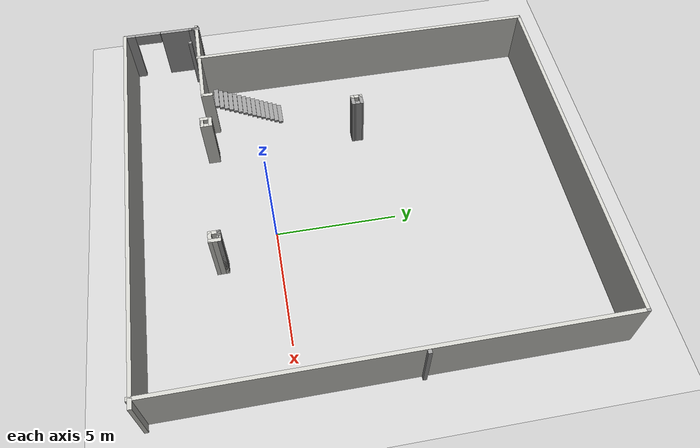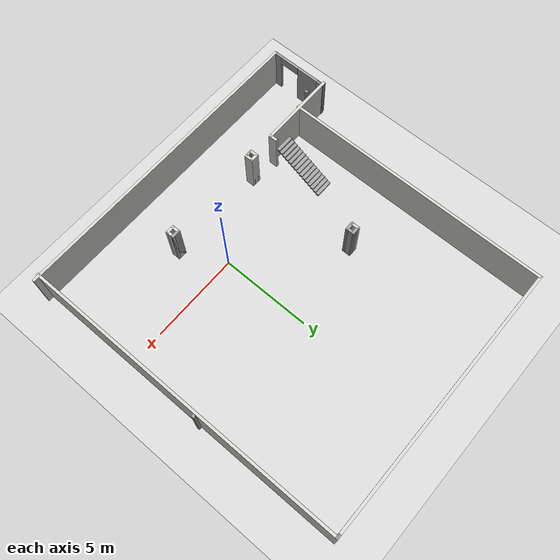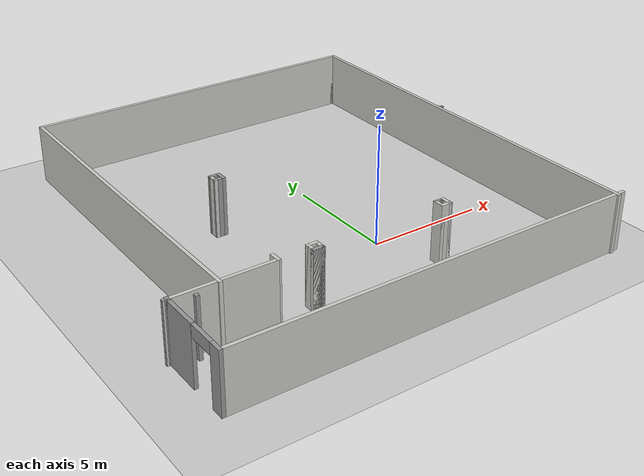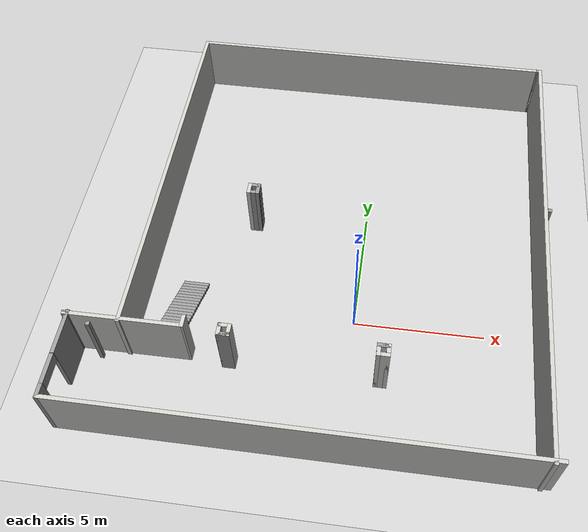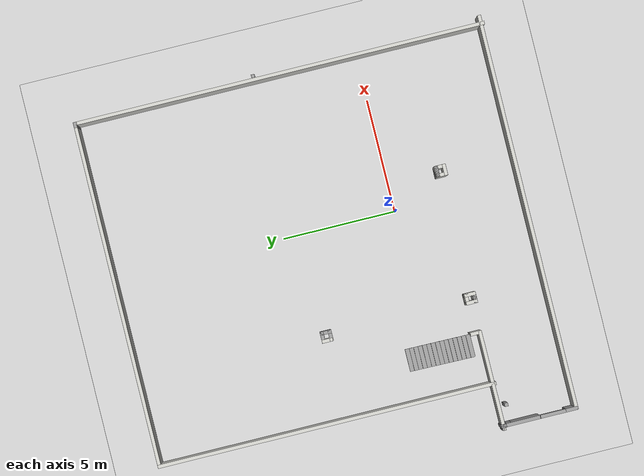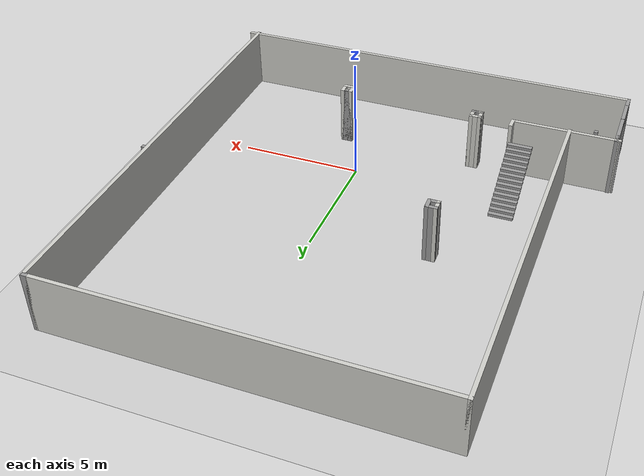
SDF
<sdf version="1.6">
 <world name="default">
  <model name="ground_plane">
   <static>1</static>
   <link name="link">
    <collision name="collision">
     <geometry><plane><normal>0 0 1</normal><size>100 100</size></plane></geometry>
     <surface><friction><ode><mu>100</mu><mu2>50</mu2></ode></friction></surface>
    </collision>
    <visual name="visual">
     <cast_shadows>0</cast_shadows>
     <geometry><plane><normal>0 0 1</normal><size>100 100</size></plane></geometry>
     <material>
      <script><uri>file://media/materials/scripts/gazebo.material</uri><name>Gazebo/Grey</name></script>
     </material>
    </visual>
   </link>
  </model>
  <model name="DroneLab">
   <pose>-1.49555 3.47526 0 0 -0 0</pose>
   <link name="Stairs_5">
    <visual name="Stairs_5_Visual_0">
     <pose>-4.94634 -2.5451 0.056667 0 -0 0</pose>
     <geometry><box><size>1 0.1908 0.113333</size></box></geometry>
     <material>
      <script><uri>file://media/materials/scripts/gazebo.material</uri><name>Gazebo/Grey</name></script>
      <ambient>1 1 1 1</ambient>
     </material>
    </visual>
    <collision name="Stairs_5_Collision_0">
     <geometry><box><size>1 0.1908 0.113333</size></box></geometry>
     <pose>-4.94634 -2.5451 0.056667 0 -0 0</pose>
    </collision>
    <visual name="Stairs_5_Visual_1">
     <pose>-4.94634 -2.7359 0.17 0 -0 0</pose>
     <geometry><box><size>1 0.1908 0.113333</size></box></geometry>
     <material>
      <script><uri>file://media/materials/scripts/gazebo.material</uri><name>Gazebo/Grey</name></script>
      <ambient>1 1 1 1</ambient>
     </material>
    </visual>
    <collision name="Stairs_5_Collision_1">
     <geometry><box><size>1 0.1908 0.113333</size></box></geometry>
     <pose>-4.94634 -2.7359 0.17 0 -0 0</pose>
    </collision>
    <visual name="Stairs_5_Visual_2">
     <pose>-4.94634 -2.9267 0.283333 0 -0 0</pose>
     <geometry><box><size>1 0.1908 0.113333</size></box></geometry>
     <material>
      <script><uri>file://media/materials/scripts/gazebo.material</uri><name>Gazebo/Grey</name></script>
      <ambient>1 1 1 1</ambient>
     </material>
    </visual>
    <collision name="Stairs_5_Collision_2">
     <geometry><box><size>1 0.1908 0.113333</size></box></geometry>
     <pose>-4.94634 -2.9267 0.283333 0 -0 0</pose>
    </collision>
    <visual name="Stairs_5_Visual_3">
     <pose>-4.94634 -3.1175 0.396667 0 -0 0</pose>
     <geometry><box><size>1 0.1908 0.113333</size></box></geometry>
     <material>
      <script><uri>file://media/materials/scripts/gazebo.material</uri><name>Gazebo/Grey</name></script>
      <ambient>1 1 1 1</ambient>
     </material>
    </visual>
    <collision name="Stairs_5_Collision_3">
     <geometry><box><size>1 0.1908 0.113333</size></box></geometry>
     <pose>-4.94634 -3.1175 0.396667 0 -0 0</pose>
    </collision>
    <visual name="Stairs_5_Visual_4">
     <pose>-4.94634 -3.3083 0.51 0 -0 0</pose>
     <geometry><box><size>1 0.1908 0.113333</size></box></geometry>
     <material>
      <script><uri>file://media/materials/scripts/gazebo.material</uri><name>Gazebo/Grey</name></script>
      <ambient>1 1 1 1</ambient>
     </material>
    </visual>
    <collision name="Stairs_5_Collision_4">
     <geometry><box><size>1 0.1908 0.113333</size></box></geometry>
     <pose>-4.94634 -3.3083 0.51 0 -0 0</pose>
    </collision>
    <visual name="Stairs_5_Visual_5">
     <pose>-4.94634 -3.4991 0.623333 0 -0 0</pose>
     <geometry><box><size>1 0.1908 0.113333</size></box></geometry>
     <material>
      <script><uri>file://media/materials/scripts/gazebo.material</uri><name>Gazebo/Grey</name></script>
      <ambient>1 1 1 1</ambient>
     </material>
    </visual>
    <collision name="Stairs_5_Collision_5">
     <geometry><box><size>1 0.1908 0.113333</size></box></geometry>
     <pose>-4.94634 -3.4991 0.623333 0 -0 0</pose>
    </collision>
    <visual name="Stairs_5_Visual_6">
     <pose>-4.94634 -3.6899 0.736667 0 -0 0</pose>
     <geometry><box><size>1 0.1908 0.113333</size></box></geometry>
     <material>
      <script><uri>file://media/materials/scripts/gazebo.material</uri><name>Gazebo/Grey</name></script>
      <ambient>1 1 1 1</ambient>
     </material>
    </visual>
    <collision name="Stairs_5_Collision_6">
     <geometry><box><size>1 0.1908 0.113333</size></box></geometry>
     <pose>-4.94634 -3.6899 0.736667 0 -0 0</pose>
    </collision>
    <visual name="Stairs_5_Visual_7">
     <pose>-4.94634 -3.8807 0.85 0 -0 0</pose>
     <geometry><box><size>1 0.1908 0.113333</size></box></geometry>
     <material>
      <script><uri>file://media/materials/scripts/gazebo.material</uri><name>Gazebo/Grey</name></script>
      <ambient>1 1 1 1</ambient>
     </material>
    </visual>
    <collision name="Stairs_5_Collision_7">
     <geometry><box><size>1 0.1908 0.113333</size></box></geometry>
     <pose>-4.94634 -3.8807 0.85 0 -0 0</pose>
    </collision>
    <visual name="Stairs_5_Visual_8">
     <pose>-4.94634 -4.0715 0.963333 0 -0 0</pose>
     <geometry><box><size>1 0.1908 0.113333</size></box></geometry>
     <material>
      <script><uri>file://media/materials/scripts/gazebo.material</uri><name>Gazebo/Grey</name></script>
      <ambient>1 1 1 1</ambient>
     </material>
    </visual>
    <collision name="Stairs_5_Collision_8">
     <geometry><box><size>1 0.1908 0.113333</size></box></geometry>
     <pose>-4.94634 -4.0715 0.963333 0 -0 0</pose>
    </collision>
    <visual name="Stairs_5_Visual_9">
     <pose>-4.94634 -4.2623 1.07667 0 -0 0</pose>
     <geometry><box><size>1 0.1908 0.113333</size></box></geometry>
     <material>
      <script><uri>file://media/materials/scripts/gazebo.material</uri><name>Gazebo/Grey</name></script>
      <ambient>1 1 1 1</ambient>
     </material>
    </visual>
    <collision name="Stairs_5_Collision_9">
     <geometry><box><size>1 0.1908 0.113333</size></box></geometry>
     <pose>-4.94634 -4.2623 1.07667 0 -0 0</pose>
    </collision>
    <visual name="Stairs_5_Visual_10">
     <pose>-4.94634 -4.4531 1.19 0 -0 0</pose>
     <geometry><box><size>1 0.1908 0.113333</size></box></geometry>
     <material>
      <script><uri>file://media/materials/scripts/gazebo.material</uri><name>Gazebo/Grey</name></script>
      <ambient>1 1 1 1</ambient>
     </material>
    </visual>
    <collision name="Stairs_5_Collision_10">
     <geometry><box><size>1 0.1908 0.113333</size></box></geometry>
     <pose>-4.94634 -4.4531 1.19 0 -0 0</pose>
    </collision>
    <visual name="Stairs_5_Visual_11">
     <pose>-4.94634 -4.6439 1.30333 0 -0 0</pose>
     <geometry><box><size>1 0.1908 0.113333</size></box></geometry>
     <material>
      <script><uri>file://media/materials/scripts/gazebo.material</uri><name>Gazebo/Grey</name></script>
      <ambient>1 1 1 1</ambient>
     </material>
    </visual>
    <collision name="Stairs_5_Collision_11">
     <geometry><box><size>1 0.1908 0.113333</size></box></geometry>
     <pose>-4.94634 -4.6439 1.30333 0 -0 0</pose>
    </collision>
    <visual name="Stairs_5_Visual_12">
     <pose>-4.94634 -4.8347 1.41667 0 -0 0</pose>
     <geometry><box><size>1 0.1908 0.113333</size></box></geometry>
     <material>
      <script><uri>file://media/materials/scripts/gazebo.material</uri><name>Gazebo/Grey</name></script>
      <ambient>1 1 1 1</ambient>
     </material>
    </visual>
    <collision name="Stairs_5_Collision_12">
     <geometry><box><size>1 0.1908 0.113333</size></box></geometry>
     <pose>-4.94634 -4.8347 1.41667 0 -0 0</pose>
    </collision>
    <visual name="Stairs_5_Visual_13">
     <pose>-4.94634 -5.0255 1.53 0 -0 0</pose>
     <geometry><box><size>1 0.1908 0.113333</size></box></geometry>
     <material>
      <script><uri>file://media/materials/scripts/gazebo.material</uri><name>Gazebo/Grey</name></script>
      <ambient>1 1 1 1</ambient>
     </material>
    </visual>
    <collision name="Stairs_5_Collision_13">
     <geometry><box><size>1 0.1908 0.113333</size></box></geometry>
     <pose>-4.94634 -5.0255 1.53 0 -0 0</pose>
    </collision>
    <visual name="Stairs_5_Visual_14">
     <pose>-4.94634 -5.2163 1.64333 0 -0 0</pose>
     <geometry><box><size>1 0.1908 0.113333</size></box></geometry>
     <material>
      <script><uri>file://media/materials/scripts/gazebo.material</uri><name>Gazebo/Grey</name></script>
      <ambient>1 1 1 1</ambient>
     </material>
    </visual>
    <collision name="Stairs_5_Collision_14">
     <geometry><box><size>1 0.1908 0.113333</size></box></geometry>
     <pose>-4.94634 -5.2163 1.64333 0 -0 0</pose>
    </collision>
   </link>
   <link name="Wall_0">
    <collision name="Wall_0_Collision">
     <geometry><box><size>0.5 0.15 2.5</size></box></geometry>
     <pose>0 0 1.25 0 -0 0</pose>
    </collision>
    <visual name="Wall_0_Visual">
     <pose>0 0 1.25 0 -0 0</pose>
     <geometry><box><size>0.5 0.15 2.5</size></box></geometry>
     <material>
      <script><uri>file://media/materials/scripts/gazebo.material</uri><name>Gazebo/CeilingTiled</name></script>
      <ambient>1 1 1 1</ambient>
     </material>
    </visual>
    <pose>-3.12301 -5.70317 0 0 -0 1.5708</pose>
   </link>
   <link name="Wall_1">
    <collision name="Wall_1_Collision">
     <geometry><box><size>0.5 0.15 2.5</size></box></geometry>
     <pose>0 0 1.25 0 -0 0</pose>
    </collision>
    <visual name="Wall_1_Visual">
     <pose>0 0 1.25 0 -0 0</pose>
     <geometry><box><size>0.5 0.15 2.5</size></box></geometry>
     <material>
      <script><uri>file://media/materials/scripts/gazebo.material</uri><name>Gazebo/CeilingTiled</name></script>
      <ambient>1 1 1 1</ambient>
     </material>
    </visual>
    <pose>-2.94801 -5.52817 0 0 -0 0</pose>
   </link>
   <link name="Wall_2">
    <collision name="Wall_2_Collision">
     <geometry><box><size>0.5 0.15 2.5</size></box></geometry>
     <pose>0 0 1.25 0 -0 0</pose>
    </collision>
    <visual name="Wall_2_Visual">
     <pose>0 0 1.25 0 -0 0</pose>
     <geometry><box><size>0.5 0.15 2.5</size></box></geometry>
     <material>
      <script><uri>file://media/materials/scripts/gazebo.material</uri><name>Gazebo/CeilingTiled</name></script>
      <ambient>1 1 1 1</ambient>
     </material>
    </visual>
    <pose>-2.773 -5.70317 0 0 0 -1.5708</pose>
   </link>
   <link name="Wall_3">
    <collision name="Wall_3_Collision">
     <geometry><box><size>0.5 0.15 2.5</size></box></geometry>
     <pose>0 0 1.25 0 -0 0</pose>
    </collision>
    <visual name="Wall_3_Visual">
     <pose>0 0 1.25 0 -0 0</pose>
     <geometry><box><size>0.5 0.15 2.5</size></box></geometry>
     <material>
      <script><uri>file://media/materials/scripts/gazebo.material</uri><name>Gazebo/Grey</name></script>
      <ambient>1 1 1 1</ambient>
     </material>
    </visual>
    <pose>-2.94801 -5.87817 0 0 -0 3.14159</pose>
   </link>
   <link name="Wall_4">
    <collision name="Wall_4_Collision">
     <geometry><box><size>0.5 0.15 2.5</size></box></geometry>
     <pose>0 0 1.25 0 -0 0</pose>
    </collision>
    <visual name="Wall_4_Visual">
     <pose>0 0 1.25 0 -0 0</pose>
     <geometry><box><size>0.5 0.15 2.5</size></box></geometry>
     <material>
      <script><uri>file://media/materials/scripts/gazebo.material</uri><name>Gazebo/CeilingTiled</name></script>
      <ambient>1 1 1 1</ambient>
     </material>
    </visual>
    <pose>-2.94801 -5.87817 0 0 -0 0</pose>
   </link>
   <link name="Wall_42">
    <collision name="Wall_42_Collision">
     <geometry><box><size>0.5 0.15 2.5</size></box></geometry>
     <pose>0 0 1.25 0 -0 0</pose>
    </collision>
    <visual name="Wall_42_Visual">
     <pose>0 0 1.25 0 -0 0</pose>
     <geometry><box><size>0.5 0.15 2.5</size></box></geometry>
     <material>
      <script><uri>file://media/materials/scripts/gazebo.material</uri><name>Gazebo/CeilingTiled</name></script>
      <ambient>1 1 1 1</ambient>
     </material>
    </visual>
    <pose>2.52847 -5.77691 0 0 0 -1.5708</pose>
   </link>
   <link name="Wall_43">
    <collision name="Wall_43_Collision">
     <geometry><box><size>0.5 0.15 2.5</size></box></geometry>
     <pose>0 0 1.25 0 -0 0</pose>
    </collision>
    <visual name="Wall_43_Visual">
     <pose>0 0 1.25 0 -0 0</pose>
     <geometry><box><size>0.5 0.15 2.5</size></box></geometry>
     <material>
      <script><uri>file://media/materials/scripts/gazebo.material</uri><name>Gazebo/CeilingTiled</name></script>
      <ambient>1 1 1 1</ambient>
     </material>
    </visual>
    <pose>2.70348 -5.95191 0 0 -0 0</pose>
   </link>
   <link name="Wall_44">
    <collision name="Wall_44_Collision">
     <geometry><box><size>0.5 0.15 2.5</size></box></geometry>
     <pose>0 0 1.25 0 -0 0</pose>
    </collision>
    <visual name="Wall_44_Visual">
     <pose>0 0 1.25 0 -0 0</pose>
     <geometry><box><size>0.5 0.15 2.5</size></box></geometry>
     <material>
      <script><uri>file://media/materials/scripts/gazebo.material</uri><name>Gazebo/CeilingTiled</name></script>
      <ambient>1 1 1 1</ambient>
     </material>
    </visual>
    <pose>2.87847 -5.77691 0 0 -0 1.5708</pose>
   </link>
   <link name="Wall_45">
    <collision name="Wall_45_Collision">
     <geometry><box><size>0.5 0.15 2.5</size></box></geometry>
     <pose>0 0 1.25 0 -0 0</pose>
    </collision>
    <visual name="Wall_45_Visual">
     <pose>0 0 1.25 0 -0 0</pose>
     <geometry><box><size>0.5 0.15 2.5</size></box></geometry>
     <material>
      <script><uri>file://media/materials/scripts/gazebo.material</uri><name>Gazebo/Grey</name></script>
      <ambient>1 1 1 1</ambient>
     </material>
    </visual>
    <pose>2.70348 -5.60191 0 0 -0 3.14159</pose>
   </link>
   <link name="Wall_46">
    <collision name="Wall_46_Collision">
     <geometry><box><size>0.5 0.15 2.5</size></box></geometry>
     <pose>0 0 1.25 0 -0 0</pose>
    </collision>
    <visual name="Wall_46_Visual">
     <pose>0 0 1.25 0 -0 0</pose>
     <geometry><box><size>0.5 0.15 2.5</size></box></geometry>
     <material>
      <script><uri>file://media/materials/scripts/gazebo.material</uri><name>Gazebo/CeilingTiled</name></script>
      <ambient>1 1 1 1</ambient>
     </material>
    </visual>
    <pose>2.70348 -5.60191 0 0 -0 0</pose>
   </link>
   <link name="Wall_49">
    <collision name="Wall_49_Collision">
     <geometry><box><size>17.5 0.15 2.5</size></box></geometry>
     <pose>0 0 1.25 0 -0 0</pose>
    </collision>
    <visual name="Wall_49_Visual">
     <pose>0 0 1.25 0 -0 0</pose>
     <geometry><box><size>17.5 0.15 2.5</size></box></geometry>
     <material>
      <script><uri>file://media/materials/scripts/gazebo.material</uri><name>Gazebo/CeilingTiled</name></script>
      <ambient>1 1 1 1</ambient>
     </material>
    </visual>
    <pose>0.066965 -8.97646 0 0 -0 3.14159</pose>
   </link>
   <link name="Wall_50">
    <pose>-8.6195 -7.3916 0 0 -0 1.5708</pose>
    <visual name="Wall_50_Visual_0">
     <pose>-1.3898 0 1.25 0 -0 0</pose>
     <geometry><box><size>0.540116 0.15 2.5</size></box></geometry>
     <material>
      <script><uri>file://media/materials/scripts/gazebo.material</uri><name>Gazebo/Grey</name></script>
      <ambient>1 1 1 1</ambient>
     </material>
    </visual>
    <collision name="Wall_50_Collision_0">
     <geometry><box><size>0.540116 0.15 2.5</size></box></geometry>
     <pose>-1.3898 0 1.25 0 -0 0</pose>
    </collision>
    <visual name="Wall_50_Visual_1">
     <pose>0.840426 0 1.25 0 -0 0</pose>
     <geometry><box><size>1.63887 0.15 2.5</size></box></geometry>
     <material>
      <script><uri>file://media/materials/scripts/gazebo.material</uri><name>Gazebo/Grey</name></script>
      <ambient>1 1 1 1</ambient>
     </material>
    </visual>
    <collision name="Wall_50_Collision_1">
     <geometry><box><size>1.63887 0.15 2.5</size></box></geometry>
     <pose>0.840426 0 1.25 0 -0 0</pose>
    </collision>
    <visual name="Wall_50_Visual_2">
     <pose>1.47373 0 1.25 0 -0 0</pose>
     <geometry><box><size>0.372264 0.15 2.5</size></box></geometry>
     <material>
      <script><uri>file://media/materials/scripts/gazebo.material</uri><name>Gazebo/Grey</name></script>
      <ambient>1 1 1 1</ambient>
     </material>
    </visual>
    <collision name="Wall_50_Collision_2">
     <geometry><box><size>0.372264 0.15 2.5</size></box></geometry>
     <pose>1.47373 0 1.25 0 -0 0</pose>
    </collision>
    <visual name="Wall_50_Visual_3">
     <pose>-0.557342 0 2.25 0 -0 0</pose>
     <geometry><box><size>1.12481 0.15 0.5</size></box></geometry>
     <material>
      <script><uri>file://media/materials/scripts/gazebo.material</uri><name>Gazebo/Grey</name></script>
      <ambient>1 1 1 1</ambient>
     </material>
    </visual>
    <collision name="Wall_50_Collision_3">
     <geometry><box><size>1.12481 0.15 0.5</size></box></geometry>
     <pose>-0.557342 0 2.25 0 -0 0</pose>
    </collision>
   </link>
   <link name="Wall_51">
    <collision name="Wall_51_Collision">
     <geometry><box><size>0.15 0.15 2.5</size></box></geometry>
     <pose>0 0 1.25 0 -0 0</pose>
    </collision>
    <visual name="Wall_51_Visual">
     <pose>0 0 1.25 0 -0 0</pose>
     <geometry><box><size>0.15 0.15 2.5</size></box></geometry>
     <material>
      <script><uri>file://media/materials/scripts/gazebo.material</uri><name>Gazebo/Grey</name></script>
      <ambient>1 1 1 1</ambient>
     </material>
    </visual>
    <pose>-8.6195 -5.80674 0 0 -0 0</pose>
   </link>
   <link name="Wall_52">
    <collision name="Wall_52_Collision">
     <geometry><box><size>0.25 0.15 2.5</size></box></geometry>
     <pose>0 0 1.25 0 -0 0</pose>
    </collision>
    <visual name="Wall_52_Visual">
     <pose>0 0 1.25 0 -0 0</pose>
     <geometry><box><size>0.25 0.15 2.5</size></box></geometry>
     <material>
      <script><uri>file://media/materials/scripts/gazebo.material</uri><name>Gazebo/Grey</name></script>
      <ambient>1 1 1 1</ambient>
     </material>
    </visual>
    <pose>-8.6195 -5.75674 0 0 -0 1.5708</pose>
   </link>
   <link name="Wall_53">
    <collision name="Wall_53_Collision">
     <geometry><box><size>0.25 0.15 2.5</size></box></geometry>
     <pose>0 0 1.25 0 -0 0</pose>
    </collision>
    <visual name="Wall_53_Visual">
     <pose>0 0 1.25 0 -0 0</pose>
     <geometry><box><size>0.25 0.15 2.5</size></box></geometry>
     <material>
      <script><uri>file://media/materials/scripts/gazebo.material</uri><name>Gazebo/Grey</name></script>
      <ambient>1 1 1 1</ambient>
     </material>
    </visual>
    <pose>-8.6195 -5.75674 0 0 0 -1.5708</pose>
   </link>
   <link name="Wall_54">
    <collision name="Wall_54_Collision">
     <geometry><box><size>0.25 0.15 2.5</size></box></geometry>
     <pose>0 0 1.25 0 -0 0</pose>
    </collision>
    <visual name="Wall_54_Visual">
     <pose>0 0 1.25 0 -0 0</pose>
     <geometry><box><size>0.25 0.15 2.5</size></box></geometry>
     <material>
      <script><uri>file://media/materials/scripts/gazebo.material</uri><name>Gazebo/Grey</name></script>
      <ambient>1 1 1 1</ambient>
     </material>
    </visual>
    <pose>-8.6195 -5.75674 0 0 -0 1.5708</pose>
   </link>
   <link name="Wall_55">
    <collision name="Wall_55_Collision">
     <geometry><box><size>0.25 0.15 2.5</size></box></geometry>
     <pose>0 0 1.25 0 -0 0</pose>
    </collision>
    <visual name="Wall_55_Visual">
     <pose>0 0 1.25 0 -0 0</pose>
     <geometry><box><size>0.25 0.15 2.5</size></box></geometry>
     <material>
      <script><uri>file://media/materials/scripts/gazebo.material</uri><name>Gazebo/Grey</name></script>
      <ambient>1 1 1 1</ambient>
     </material>
    </visual>
    <pose>-8.6195 -5.76239 0 0 0 -1.5708</pose>
   </link>
   <link name="Wall_59">
    <collision name="Wall_59_Collision">
     <geometry><box><size>0.15 0.15 2.5</size></box></geometry>
     <pose>0 0 1.25 0 -0 0</pose>
    </collision>
    <visual name="Wall_59_Visual">
     <pose>0 0 1.25 0 -0 0</pose>
     <geometry><box><size>0.15 0.15 2.5</size></box></geometry>
     <material>
      <script><uri>file://media/materials/scripts/gazebo.material</uri><name>Gazebo/Grey</name></script>
      <ambient>1 1 1 1</ambient>
     </material>
    </visual>
    <pose>-7.75553 -6.0809 0 0 -0 0</pose>
   </link>
   <link name="Wall_6">
    <collision name="Wall_6_Collision">
     <geometry><box><size>0.5 0.15 2.5</size></box></geometry>
     <pose>0 0 1.25 0 -0 0</pose>
    </collision>
    <visual name="Wall_6_Visual">
     <pose>0 0 1.25 0 -0 0</pose>
     <geometry><box><size>0.5 0.15 2.5</size></box></geometry>
     <material>
      <script><uri>file://media/materials/scripts/gazebo.material</uri><name>Gazebo/CeilingTiled</name></script>
      <ambient>1 1 1 1</ambient>
     </material>
    </visual>
    <pose>-4.45951 -5.55645 0 0 0 -1.5708</pose>
   </link>
   <link name="Wall_62">
    <collision name="Wall_62_Collision">
     <geometry><box><size>0.5 0.15 2.5</size></box></geometry>
     <pose>0 0 1.25 0 -0 0</pose>
    </collision>
    <visual name="Wall_62_Visual">
     <pose>0 0 1.25 0 -0 0</pose>
     <geometry><box><size>0.5 0.15 2.5</size></box></geometry>
     <material>
      <script><uri>file://media/materials/scripts/gazebo.material</uri><name>Gazebo/Grey</name></script>
      <ambient>1 1 1 1</ambient>
     </material>
    </visual>
    <pose>-3.05288 0.549165 0 0 -0 0</pose>
   </link>
   <link name="Wall_63">
    <collision name="Wall_63_Collision">
     <geometry><box><size>0.5 0.15 2.5</size></box></geometry>
     <pose>0 0 1.25 0 -0 0</pose>
    </collision>
    <visual name="Wall_63_Visual">
     <pose>0 0 1.25 0 -0 0</pose>
     <geometry><box><size>0.5 0.15 2.5</size></box></geometry>
     <material>
      <script><uri>file://media/materials/scripts/gazebo.material</uri><name>Gazebo/Grey</name></script>
      <ambient>1 1 1 1</ambient>
     </material>
    </visual>
    <pose>-2.87794 0.724 0 0 -0 1.57117</pose>
   </link>
   <link name="Wall_64">
    <collision name="Wall_64_Collision">
     <geometry><box><size>0.5 0.15 2.5</size></box></geometry>
     <pose>0 0 1.25 0 -0 0</pose>
    </collision>
    <visual name="Wall_64_Visual">
     <pose>0 0 1.25 0 -0 0</pose>
     <geometry><box><size>0.5 0.15 2.5</size></box></geometry>
     <material>
      <script><uri>file://media/materials/scripts/gazebo.material</uri><name>Gazebo/Grey</name></script>
      <ambient>1 1 1 1</ambient>
     </material>
    </visual>
    <pose>-3.05301 0.898834 0 0 -0 3.14159</pose>
   </link>
   <link name="Wall_65">
    <collision name="Wall_65_Collision">
     <geometry><box><size>0.5 0.15 2.5</size></box></geometry>
     <pose>0 0 1.25 0 -0 0</pose>
    </collision>
    <visual name="Wall_65_Visual">
     <pose>0 0 1.25 0 -0 0</pose>
     <geometry><box><size>0.5 0.15 2.5</size></box></geometry>
     <material>
      <script><uri>file://media/materials/scripts/gazebo.material</uri><name>Gazebo/CeilingTiled</name></script>
      <ambient>1 1 1 1</ambient>
     </material>
    </visual>
    <pose>-3.22794 0.724 0 0 0 -1.57042</pose>
   </link>
   <link name="Wall_66">
    <collision name="Wall_66_Collision">
     <geometry><box><size>0.15 0.15 2.5</size></box></geometry>
     <pose>0 0 1.25 0 -0 0</pose>
    </collision>
    <visual name="Wall_66_Visual">
     <pose>0 0 1.25 0 -0 0</pose>
     <geometry><box><size>0.15 0.15 2.5</size></box></geometry>
     <material>
      <script><uri>file://media/materials/scripts/gazebo.material</uri><name>Gazebo/CeilingTiled</name></script>
      <ambient>1 1 1 1</ambient>
     </material>
    </visual>
    <pose>-3.22788 0.549165 0 0 -0 0</pose>
   </link>
   <link name="Wall_7">
    <collision name="Wall_7_Collision">
     <geometry><box><size>4.42654 0.15 2.5</size></box></geometry>
     <pose>0 0 1.25 0 -0 0</pose>
    </collision>
    <visual name="Wall_7_Visual">
     <pose>0 0 1.25 0 -0 0</pose>
     <geometry><box><size>4.42654 0.15 2.5</size></box></geometry>
     <material>
      <script><uri>file://media/materials/scripts/gazebo.material</uri><name>Gazebo/CeilingTiled</name></script>
      <ambient>1 1 1 1</ambient>
     </material>
    </visual>
    <pose>-6.60341 -5.73993 0 0 0 -3.13763</pose>
   </link>
   <link name="Wall_70">
    <collision name="Wall_70_Collision">
     <geometry><box><size>0.15 0.15 2.5</size></box></geometry>
     <pose>0 0 1.25 0 -0 0</pose>
    </collision>
    <visual name="Wall_70_Visual">
     <pose>0 0 1.25 0 -0 0</pose>
     <geometry><box><size>0.15 0.15 2.5</size></box></geometry>
     <material>
      <script><uri>file://media/materials/scripts/gazebo.material</uri><name>Gazebo/Grey</name></script>
      <ambient>1 1 1 1</ambient>
     </material>
    </visual>
    <pose>8.6026 1.111 0 0 -0 0</pose>
   </link>
   <link name="Wall_8">
    <collision name="Wall_8_Collision">
     <geometry><box><size>0.15 0.15 2.5</size></box></geometry>
     <pose>0 0 1.25 0 -0 0</pose>
    </collision>
    <visual name="Wall_8_Visual">
     <pose>0 0 1.25 0 -0 0</pose>
     <geometry><box><size>0.15 0.15 2.5</size></box></geometry>
     <material>
      <script><uri>file://media/materials/scripts/gazebo.material</uri><name>Gazebo/Grey</name></script>
      <ambient>1 1 1 1</ambient>
     </material>
    </visual>
    <pose>-8.74167 -5.74841 0 0 -0 0</pose>
   </link>
   <link name="Wall_80">
    <collision name="Wall_80_Collision">
     <geometry><box><size>15 0.15 2.5</size></box></geometry>
     <pose>0 0 1.25 0 -0 0</pose>
    </collision>
    <visual name="Wall_80_Visual">
     <pose>0 0 1.25 0 -0 0</pose>
     <geometry><box><size>15 0.15 2.5</size></box></geometry>
     <material>
      <script><uri>file://media/materials/scripts/gazebo.material</uri><name>Gazebo/CeilingTiled</name></script>
      <ambient>1 1 1 1</ambient>
     </material>
    </visual>
    <pose>-6.75271 1.625 0 0 -0 1.5708</pose>
   </link>
   <link name="Wall_81">
    <collision name="Wall_81_Collision">
     <geometry><box><size>15.25 0.15 2.5</size></box></geometry>
     <pose>0 0 1.25 0 -0 0</pose>
    </collision>
    <visual name="Wall_81_Visual">
     <pose>0 0 1.25 0 -0 0</pose>
     <geometry><box><size>15.25 0.15 2.5</size></box></geometry>
     <material>
      <script><uri>file://media/materials/scripts/gazebo.material</uri><name>Gazebo/CeilingTiled</name></script>
      <ambient>1 1 1 1</ambient>
     </material>
    </visual>
    <pose>0.797289 9.05 0 0 -0 0</pose>
   </link>
   <link name="Wall_82">
    <collision name="Wall_82_Collision">
     <geometry><box><size>0.25 0.15 2.5</size></box></geometry>
     <pose>0 0 1.25 0 -0 0</pose>
    </collision>
    <visual name="Wall_82_Visual">
     <pose>0 0 1.25 0 -0 0</pose>
     <geometry><box><size>0.25 0.15 2.5</size></box></geometry>
     <material>
      <script><uri>file://media/materials/scripts/gazebo.material</uri><name>Gazebo/Grey</name></script>
      <ambient>1 1 1 1</ambient>
     </material>
    </visual>
    <pose>8.39729 9.05 0 0 -0 0</pose>
   </link>
   <link name="Wall_83">
    <collision name="Wall_83_Collision">
     <geometry><box><size>18.25 0.15 2.5</size></box></geometry>
     <pose>0 0 1.25 0 -0 0</pose>
    </collision>
    <visual name="Wall_83_Visual">
     <pose>0 0 1.25 0 -0 0</pose>
     <geometry><box><size>18.25 0.15 2.5</size></box></geometry>
     <material>
      <script><uri>file://media/materials/scripts/gazebo.material</uri><name>Gazebo/CeilingTiled</name></script>
      <ambient>1 1 1 1</ambient>
     </material>
    </visual>
    <pose>8.44729 0 0 0 0 -1.5708</pose>
   </link>
   <static>1</static>
  </model>
 </world>
</sdf>
